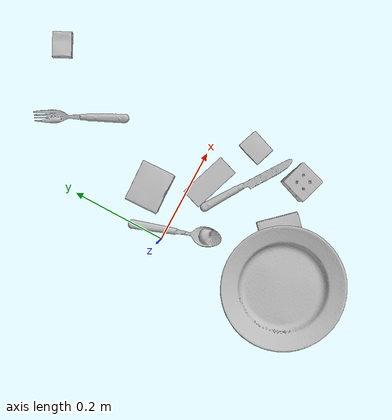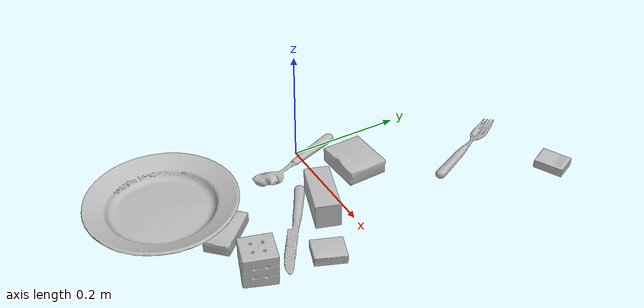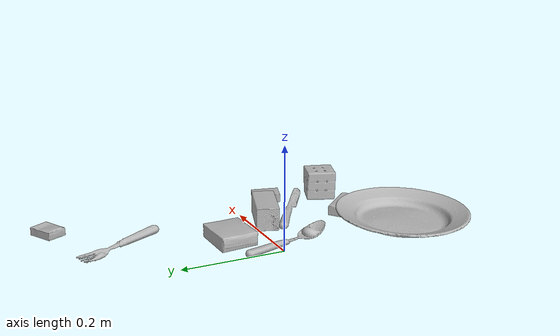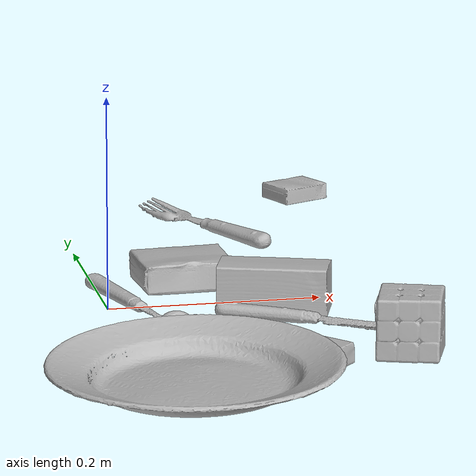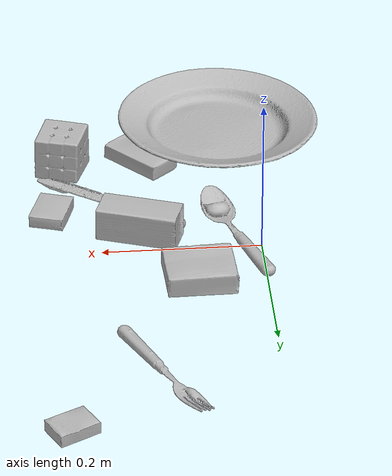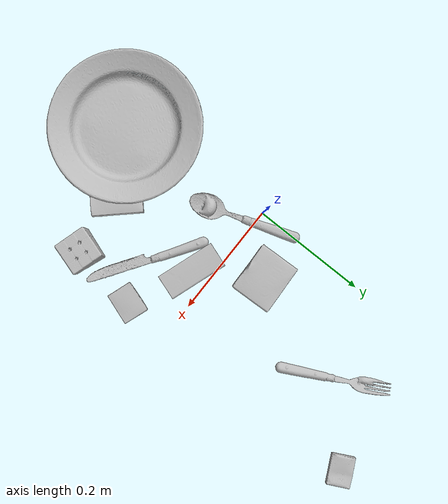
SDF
<sdf version="1.4">
  <world name="default">
    <light name="light1" type="point">
      <pose>0 0 1 0 0 0</pose>
      <diffuse>3 3 3 1</diffuse>
      <specular>3 3 3 1</specular>
    </light>
    <light name="light2" type="point">
      <pose>0 0.5 2 0 0 0</pose>
      <diffuse>1 1 1 1</diffuse>
      <specular>1 1 1 1</specular>
    </light>
    <light name="light3" type="point">
      <pose>0 0.5 2 0 0 0</pose>
      <diffuse>3 3 3 1</diffuse>
      <specular>3 3 3 1</specular>
    </light>
    <scene>
      <ambient>0.7 0.7 0.7</ambient>
    </scene>
    <model name="box11">
      <link name="link_box11">
        <collision name="default">
          <geometry>
            <mesh>
              <uri>model://gelatin_box/collision_meshes/collision.obj</uri>
              <scale>1.0 1.0 1.0</scale>
            </mesh>
          </geometry>
          <surface>
            <friction>
              <ode>
                <mu>0.5</mu>
                <mu2>0.5</mu2>
              </ode>
            </friction>
          <contact>
        <ode>
            <max_vel>0</max_vel>
            <min_depth>0.0001</min_depth>
            <kp>1e8</kp>
        </ode>
    </contact></surface>
        </collision>
        <visual name="default">
          <geometry>
            <mesh>
              <uri>model://gelatin_box/visual_meshes/visual.dae</uri>
              <scale>1.0 1.0 1.0</scale>
            </mesh>
          </geometry>
        </visual>
        <inertial>
          <mass>0.25029057264328003</mass>
          <pose>0.0004319618456065655 0.00011156871914863586 -0.0003640321083366871 -0.0010503719874808634 -0.004755820553863559 0.01644055760983946</pose>
          <inertia>
            <ixx>0.00017668474</ixx>
            <iyy>0.000126205</iyy>
            <izz>0.00026895347</izz>
            <ixy>0</ixy>
            <ixz>0</ixz>
            <iyz>0</iyz>
          </inertia>
        </inertial>
      </link>
      <pose>0.08326171338558197 0.07056095451116562 0.015168311074376106 0.0055974266554118255 -0.007304533171784972 -1.537428166620481</pose>
    </model>
    <model name="box12">
      <link name="link_box12">
        <collision name="default">
          <geometry>
            <mesh>
              <uri>model://rubiks_cube/collision_meshes/collision.obj</uri>
              <scale>1.0 1.0 1.0</scale>
            </mesh>
          </geometry>
          <surface>
            <friction>
              <ode>
                <mu>0.5</mu>
                <mu2>0.5</mu2>
              </ode>
            </friction>
          <contact>
        <ode>
            <max_vel>0</max_vel>
            <min_depth>0.0001</min_depth>
            <kp>1e8</kp>
        </ode>
    </contact></surface>
        </collision>
        <visual name="default">
          <geometry>
            <mesh>
              <uri>model://rubiks_cube/visual_meshes/visual.dae</uri>
              <scale>1.0 1.0 1.0</scale>
            </mesh>
          </geometry>
        </visual>
        <inertial>
          <mass>0.21638615429401398</mass>
          <pose>2.6721043468569405e-05 5.2569666877388954e-05 -7.264316536748083e-06 -0.054671974778446215 -0.0981397652693683 -0.03445575269454635</pose>
          <inertia>
            <ixx>0.00011956789</ixx>
            <iyy>0.00011901029</iyy>
            <izz>0.00012055871</izz>
            <ixy>0</ixy>
            <ixz>0</ixz>
            <iyz>0</iyz>
          </inertia>
        </inertial>
      </link>
      <pose>0.23905232548713684 -0.19748333096504211 0.028678936883807182 -4.930085080861927e-06 -2.061304796348131e-06 -0.310194744393023</pose>
    </model>
    <model name="box13">
      <link name="link_box13">
        <collision name="default">
          <geometry>
            <mesh>
              <uri>model://pudding_box/collision_meshes/collision.obj</uri>
              <scale>0.5 0.5 0.5</scale>
            </mesh>
          </geometry>
          <surface>
            <friction>
              <ode>
                <mu>0.5</mu>
                <mu2>0.5</mu2>
              </ode>
            </friction>
          <contact>
        <ode>
            <max_vel>0</max_vel>
            <min_depth>0.0001</min_depth>
            <kp>1e8</kp>
        </ode>
    </contact></surface>
        </collision>
        <visual name="default">
          <geometry>
            <mesh>
              <uri>model://pudding_box/visual_meshes/visual.dae</uri>
              <scale>0.5 0.5 0.5</scale>
            </mesh>
          </geometry>
        </visual>
        <inertial>
          <mass>0.024692855775356293</mass>
          <pose>0.00024474109522998333 0.00040339428232982755 -0.0002594413817860186 0.005213102294063647 -0.006603794537377036 0.020079827031592012</pose>
          <inertia>
            <ixx>6.9785e-06</ixx>
            <iyy>4.695185e-06</iyy>
            <izz>1.030558e-05</izz>
            <ixy>0</ixy>
            <ixz>0</ixz>
            <iyz>0</iyz>
          </inertia>
        </inertial>
      </link>
      <pose>0.2581847310066223 -0.08312976360321045 0.00986290629953146 0.022348659631785863 -0.011391609348133772 2.80454646839003</pose>
    </model>
    <model name="box21">
      <link name="link_box21">
        <collision name="default">
          <geometry>
            <mesh>
              <uri>model://wood_block/collision_meshes/collision.obj</uri>
              <scale>0.5 0.5 0.5</scale>
            </mesh>
          </geometry>
          <surface>
            <friction>
              <ode>
                <mu>0.5</mu>
                <mu2>0.5</mu2>
              </ode>
            </friction>
          <contact>
        <ode>
            <max_vel>0</max_vel>
            <min_depth>0.0001</min_depth>
            <kp>1e8</kp>
        </ode>
    </contact></surface>
        </collision>
        <visual name="default">
          <geometry>
            <mesh>
              <uri>model://wood_block/visual_meshes/visual.dae</uri>
              <scale>0.5 0.5 0.5</scale>
            </mesh>
          </geometry>
        </visual>
        <inertial>
          <mass>0.2621258497238159</mass>
          <pose>-2.9066577553749084e-06 -0.000285404734313488 0.00013204291462898254 -0.05220799390803197 -0.005192696360797016 -0.006861376940793837</pose>
          <inertia>
            <ixx>8.7691005e-05</ixx>
            <iyy>0.00027701593</iyy>
            <izz>0.00027597975</izz>
            <ixy>0</ixy>
            <ixz>0</ixz>
            <iyz>0</iyz>
          </inertia>
        </inertial>
      </link>
      <pose>0.14976727962493896 -0.03222621977329254 0.022629253566265106 -0.005205165194672282 0.005718906702299281 2.8156303048972213</pose>
    </model>
    <model name="box22">
      <link name="link_box22">
        <collision name="default">
          <geometry>
            <mesh>
              <uri>model://cracker_box/collision_meshes/collision.obj</uri>
              <scale>0.25 0.25 0.25</scale>
            </mesh>
          </geometry>
          <surface>
            <friction>
              <ode>
                <mu>0.5</mu>
                <mu2>0.5</mu2>
              </ode>
            </friction>
          <contact>
        <ode>
            <max_vel>0</max_vel>
            <min_depth>0.0001</min_depth>
            <kp>1e8</kp>
        </ode>
    </contact></surface>
        </collision>
        <visual name="default">
          <geometry>
            <mesh>
              <uri>model://cracker_box/visual_meshes/visual.dae</uri>
              <scale>0.25 0.25 0.25</scale>
            </mesh>
          </geometry>
        </visual>
        <inertial>
          <mass>0.04544714838266373</mass>
          <pose>0.0002366049593547359 6.358561950037256e-05 -0.0004257383698131889 -0.0003162075981767565 -0.011106493326025165 0.0025467940711340945</pose>
          <inertia>
            <ixx>7.224829e-06</ixx>
            <iyy>1.1929612e-05</iyy>
            <izz>1.702465e-05</izz>
            <ixy>0</ixy>
            <ixz>0</ixz>
            <iyz>0</iyz>
          </inertia>
        </inertial>
      </link>
      <pose>0.25604307651519775 0.36968228220939636 0.009096027351915836 -0.014050478048692278 -0.005016495959955237 -2.675273871781591</pose>
    </model>
    <model name="box23">
      <link name="link_box23">
        <collision name="default">
          <geometry>
            <mesh>
              <uri>model://sugar_box/collision_meshes/collision.obj</uri>
              <scale>0.5 0.5 0.5</scale>
            </mesh>
          </geometry>
          <surface>
            <friction>
              <ode>
                <mu>0.5</mu>
                <mu2>0.5</mu2>
              </ode>
            </friction>
          <contact>
        <ode>
            <max_vel>0</max_vel>
            <min_depth>0.0001</min_depth>
            <kp>1e8</kp>
        </ode>
    </contact></surface>
        </collision>
        <visual name="default">
          <geometry>
            <mesh>
              <uri>model://sugar_box/visual_meshes/visual.dae</uri>
              <scale>0.5 0.5 0.5</scale>
            </mesh>
          </geometry>
        </visual>
        <inertial>
          <mass>0.08974423259496689</mass>
          <pose>0.0005171863595023751 1.924554817378521e-05 -0.00018182402709499002 -0.00040462647498757867 0.0010506636387592515 0.0026153785559760484</pose>
          <inertia>
            <ixx>1.869366e-05</ixx>
            <iyy>6.0421757e-05</iyy>
            <izz>7.233205e-05</izz>
            <ixy>0</ixy>
            <ixz>0</ixz>
            <iyz>0</iyz>
          </inertia>
        </inertial>
      </link>
      <pose>0.13692018389701843 -0.20376726984977722 0.011561025865375996 -0.032972718737572126 -0.011442638926647061 2.315510840648485</pose>
    </model>
    <model name="plate1">
      <link name="link_plate1">
        <collision name="default">
          <geometry>
            <mesh>
              <uri>model://plate/collision_meshes/collision.obj</uri>
              <scale>1.0 1.0 1.0</scale>
            </mesh>
          </geometry>
          <surface>
            <friction>
              <ode>
                <mu>0.5</mu>
                <mu2>0.5</mu2>
              </ode>
            </friction>
          <contact>
        <ode>
            <max_vel>0</max_vel>
            <min_depth>0.0001</min_depth>
            <kp>1e8</kp>
        </ode>
    </contact></surface>
        </collision>
        <visual name="default">
          <geometry>
            <mesh>
              <uri>model://plate/visual_meshes/visual.dae</uri>
              <scale>1.0 1.0 1.0</scale>
            </mesh>
          </geometry>
        </visual>
        <inertial>
          <mass>0.25075921416282654</mass>
          <pose>-0.0006044597248546779 0.00027825814322568476 -0.0010562010575085878 0.0022187872861569474 -0.003225478732834207 0.4526086398584511</pose>
          <inertia>
            <ixx>0.0011730565</ixx>
            <iyy>0.0011618367</iyy>
            <izz>0.0022943232</izz>
            <ixy>0</ixy>
            <ixz>0</ixz>
            <iyz>0</iyz>
          </inertia>
        </inertial>
      </link>
      <pose>0.030738400295376778 -0.2694537937641144 0.01587001606822014 -0.019323322704618447 -0.02369092081707372 1.4638688120665695</pose>
    </model>
    <model name="silverware1">
      <link name="link_silverware1">
        <collision name="default">
          <geometry>
            <mesh>
              <uri>model://spoon/collision_meshes/collision.obj</uri>
              <scale>1.0 1.0 1.0</scale>
            </mesh>
          </geometry>
          <surface>
            <friction>
              <ode>
                <mu>0.5</mu>
                <mu2>0.5</mu2>
              </ode>
            </friction>
          <contact>
        <ode>
            <max_vel>0</max_vel>
            <min_depth>0.0001</min_depth>
            <kp>1e8</kp>
        </ode>
    </contact></surface>
        </collision>
        <visual name="default">
          <geometry>
            <mesh>
              <uri>model://spoon/visual_meshes/visual.dae</uri>
              <scale>1.0 1.0 1.0</scale>
            </mesh>
          </geometry>
        </visual>
        <inertial>
          <mass>0.036317918449640274</mass>
          <pose>-0.005526306107640266 -0.0016034167492762208 -0.0007271648501046002 0.03521625205726148 -0.039065835985121374 0.0061506181118877856</pose>
          <inertia>
            <ixx>2.0200612e-06</ixx>
            <iyy>0.00013818844</iyy>
            <izz>0.00013918467</izz>
            <ixy>0</ixy>
            <ixz>0</ixz>
            <iyz>0</iyz>
          </inertia>
        </inertial>
      </link>
      <pose>0.02926047332584858 -0.017571406438946724 0.00838526152074337 0.006732325661923155 0.026892910409796623 -1.2501793530784473</pose>
    </model>
    <model name="silverware2">
      <link name="link_silverware2">
        <collision name="default">
          <geometry>
            <mesh>
              <uri>model://knife/collision_meshes/collision.obj</uri>
              <scale>1.0 1.0 1.0</scale>
            </mesh>
          </geometry>
          <surface>
            <friction>
              <ode>
                <mu>0.5</mu>
                <mu2>0.5</mu2>
              </ode>
            </friction>
          <contact>
        <ode>
            <max_vel>0</max_vel>
            <min_depth>0.0001</min_depth>
            <kp>1e8</kp>
        </ode>
    </contact></surface>
        </collision>
        <visual name="default">
          <geometry>
            <mesh>
              <uri>model://knife/visual_meshes/visual.dae</uri>
              <scale>1.0 1.0 1.0</scale>
            </mesh>
          </geometry>
        </visual>
        <inertial>
          <mass>0.03166225552558899</mass>
          <pose>-0.02378525584936142 0.0015275123296305537 5.0620161346159875e-05 0.07305183970819301 0.01724842094470774 -0.007409827313526415</pose>
          <inertia>
            <ixx>8.9870355e-07</ixx>
            <iyy>0.00012164128</iyy>
            <izz>0.00012193073</izz>
            <ixy>0</ixy>
            <ixz>0</ixz>
            <iyz>0</iyz>
          </inertia>
        </inertial>
      </link>
      <pose>0.18134838342666626 -0.10336750745773315 0.00794664490967989 -0.02345445038646227 -0.01454364639364093 -0.5912144395389046</pose>
    </model>
    <model name="silverware3">
      <link name="link_silverware3">
        <collision name="default">
          <geometry>
            <mesh>
              <uri>model://fork/collision_meshes/collision.obj</uri>
              <scale>1.0 1.0 1.0</scale>
            </mesh>
          </geometry>
          <surface>
            <friction>
              <ode>
                <mu>0.5</mu>
                <mu2>0.5</mu2>
              </ode>
            </friction>
          <contact>
        <ode>
            <max_vel>0</max_vel>
            <min_depth>0.0001</min_depth>
            <kp>1e8</kp>
        </ode>
    </contact></surface>
        </collision>
        <visual name="default">
          <geometry>
            <mesh>
              <uri>model://fork/visual_meshes/visual.dae</uri>
              <scale>1.0 1.0 1.0</scale>
            </mesh>
          </geometry>
        </visual>
        <inertial>
          <mass>0.03018845245242119</mass>
          <pose>-0.029570050537586212 0.00046588227269239724 0.00032188609475269914 -0.013551782414775644 -0.010977841906558662 0.014453907874592884</pose>
          <inertia>
            <ixx>1.0582761e-06</ixx>
            <iyy>7.881335e-05</iyy>
            <izz>7.928668e-05</izz>
            <ixy>0</ixy>
            <ixz>0</ixz>
            <iyz>0</iyz>
          </inertia>
        </inertial>
      </link>
      <pose>0.14372959733009338 0.2647160589694977 0.005680374801158905 -0.17243849118213161 0.026183532951283405 2.0304592455436348</pose>
    </model>
  <physics type="ode">
      <max_contacts>50</max_contacts>
      <ode>
        <solver>
          <type>quick</type>
          <iters>75</iters>
        </solver>
        <constraints>
          <contact_max_correcting_vel>0</contact_max_correcting_vel>
          <contact_surface_layer>0</contact_surface_layer>
        </constraints>
      </ode>
    </physics></world>
</sdf>
